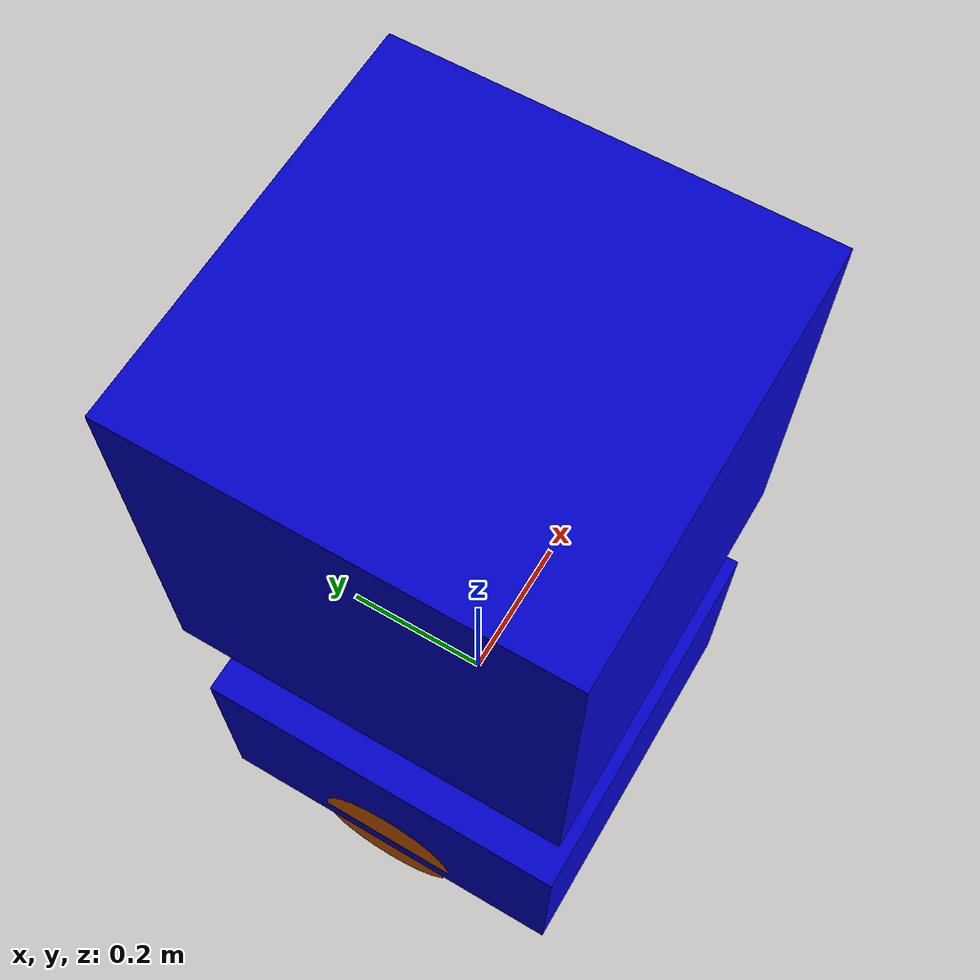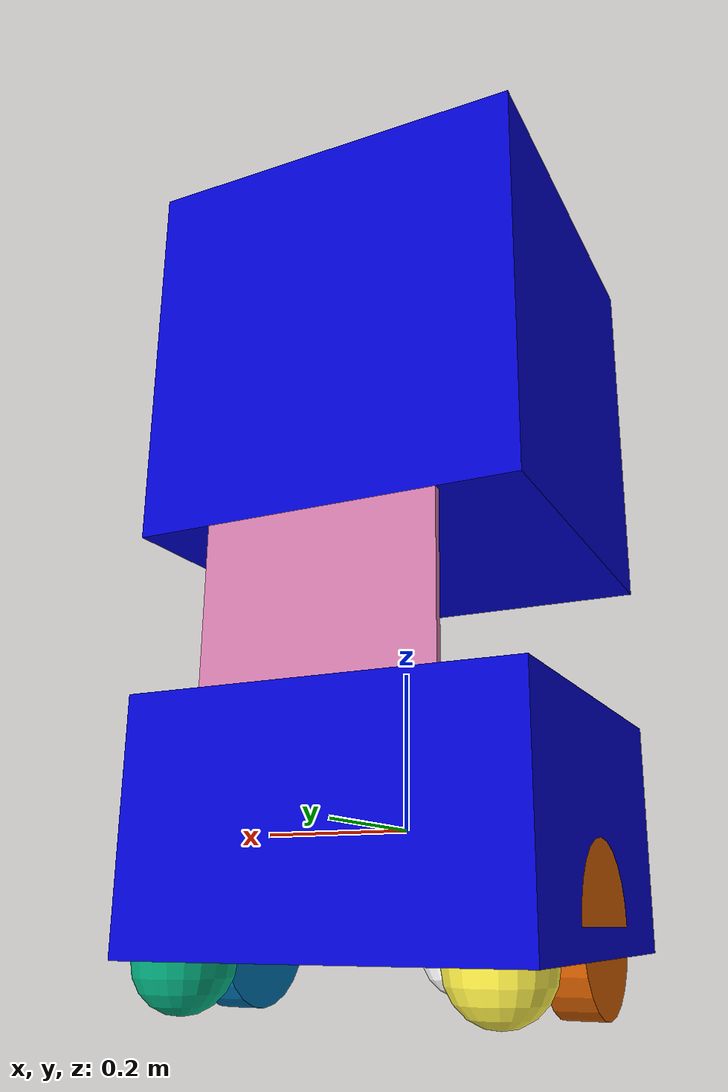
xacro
<?xml version='1.0'?>
<robot name="fyp_robot" xmlns:xacro="http://ros.org/wiki/xacro">
<!-- ixx ixy ixz
     ixy iyy iyz
     ixz iyz izz -->

  <xacro:property name="base_xy" value="0.5" />
  <xacro:property name="b_base_z" value="0.3" />
  <xacro:property name="t_base_z" value="0.5" />
  <xacro:property name="wheeldiam" value="0.2" />
  <xacro:property name="casterradi" value="0.06" />
  <xacro:property name="wheellength" value="0.05" />
  <xacro:property name="pi" value="3.1415" />
  <xacro:property name="caster_mass" value="1" />
  <xacro:property name="wheel_mass" value="5" />
  <xacro:property name="base_mass" value="10" />

  <xacro:property name="base_xy2" value="${base_xy*base_xy}" />
  <xacro:property name="b_base_z2" value="${b_base_z*b_base_z}" />
  <xacro:property name="t_base_z2" value="${t_base_z*t_base_z}" />

  <material name="blue">
    <color rgba="0 0 0.8 1"/>
  </material>

  <material name="black">
    <color rgba="0 0 0 1"/>
  </material>

  <material name="white">
    <color rgba="1 1 1 1"/>
  </material>

  <xacro:macro name="default_inertial" params="mass">
    <inertial>
      <mass value="${mass}" />
      <inertia ixx="1.0" ixy="0.0" ixz="0.0" iyy="1.0" iyz="0.0" izz="1.0" />
    </inertial>
  </xacro:macro>
  <xacro:macro name="cuboid_inertial" params="mass height">
    <inertial>
      <mass value="${mass}" />
      <inertia ixx="${(1/12)*base_mass*(height*height+base_xy2)}" ixy="0.0" ixz="0.0" iyy="${(1/12)*base_mass*(base_xy2+base_xy2)}" iyz="0.0" izz="${(1/12)*base_mass*(base_xy2+height*height)}" />
    </inertial>
  </xacro:macro>

<!-- Add the rectangular base -->
  <link name="base_link">
    <visual>
      <geometry>
        <box size="${base_xy} ${base_xy} ${b_base_z}"/>
      </geometry>
      <material name="blue"/>
    </visual>
    <collision>
      <geometry>
        <box size="${base_xy} ${base_xy} ${b_base_z}"/>
      </geometry>
    </collision>
    <xacro:cuboid_inertial mass="${base_mass}" height="${b_base_z}"/>
  </link>
<!-- add a caster front to the robot -->
  <link name="caster_front">
    <visual>
      <geometry>
        <sphere radius="${casterradi}"/>
      </geometry>
      <origin xyz="0 0 0" rpy="0 0 0"/>
      <material name="white"/>
    </visual>
    <collision>
     <geometry>
        <sphere radius="${casterradi}"/>
      </geometry>
      <origin xyz="0 0 0" rpy="0 0 0"/>
    </collision>
    <xacro:default_inertial mass="${caster_mass}"/>
  </link>
  <joint name="caster_front_joint" type="continuous">
    <parent link="base_link"/>
    <child link="caster_front"/>
    <origin xyz="0 -0.19 -0.15" rpy="0 0 0"/>
  </joint>
<!-- add a caster back left to the robot -->
  <link name="caster_back_left">
    <visual>
      <geometry>
        <sphere radius="${casterradi}"/>
      </geometry>
      <origin xyz="0 0 0" rpy="0 0 0"/>
    </visual>
    <collision>
     <geometry>
        <sphere radius="${casterradi}"/>
      </geometry>
      <origin xyz="0 0 0" rpy="0 0 0"/>
    </collision>
    <xacro:default_inertial mass="${caster_mass}"/>
  </link>
  <joint name="caster_back_left_joint" type="continuous">
    <parent link="base_link"/>
    <child link="caster_back_left"/>
    <origin xyz="0.19 0.19 -0.15" rpy="0 0 0"/>
  </joint>
<!-- add a caster back right to the robot -->
  <link name="caster_back_right">
    <visual>
      <geometry>
        <sphere radius="${casterradi}"/>
      </geometry>
      <origin xyz="0 0 0" rpy="0 0 0"/>
    </visual>
    <collision>
     <geometry>
        <sphere radius="${casterradi}"/>
      </geometry>
      <origin xyz="0 0 0" rpy="0 0 0"/>
    </collision>
    <xacro:default_inertial mass="${caster_mass}"/>
  </link>
  <joint name="caster_back_right_joint" type="continuous">
    <parent link="base_link"/>
    <child link="caster_back_right"/>
    <origin xyz="-0.19 0.19 -0.15" rpy="0 0 0"/>
  </joint>
<!-- add a left wheel to the robot -->
  <link name="left_wheel">
    <visual>
      <geometry>
        <cylinder length="${wheellength}" radius="${wheeldiam/2}"/>
      </geometry>
      <origin xyz="0 0 0" rpy="0 ${pi/2} 0"/>
    </visual>
    <collision>
     <geometry>
        <cylinder length="${wheellength}" radius="${wheeldiam/2}"/>
      </geometry>
      <origin xyz="0 0 0" rpy="0 ${pi/2} 0"/>
    </collision>
    <xacro:default_inertial mass="${wheel_mass}"/>
  </link>
  <joint name="left_wheel_joint" type="continuous">
    <parent link="base_link"/>
    <child link="left_wheel"/>
      <origin xyz="0.225 0 -0.115" rpy="0 0 0"/>
  </joint>
<!-- add a right wheel to the robot -->
  <link name="right_wheel">
    <visual>
      <geometry>
        <cylinder length="${wheellength}" radius="${wheeldiam/2}"/>
      </geometry>
      <origin xyz="0 0 0" rpy="0 ${pi/2} 0"/>
    </visual>
    <collision>
     <geometry>
        <cylinder length="${wheellength}" radius="${wheeldiam/2}"/>
      </geometry>
      <origin xyz="0 0 0" rpy="0 ${pi/2} 0"/>
    </collision>
    <xacro:default_inertial mass="${wheel_mass}"/>
  </link>
  <joint name="right_wheel_joint" type="continuous">
    <parent link="base_link"/>
    <child link="right_wheel"/>
      <origin xyz="-0.225 0 -0.115" rpy="0 0 0"/>
  </joint>
<!-- add the top part to the robot -->
  <link name="base_back">
    <visual>
      <geometry>
        <box size="0.3 0.01 0.2"/>
      </geometry>
      <origin xyz="0 0.245 0.25" rpy="0 0 0"/>
    </visual>
    <collision>
     <geometry>
        <box size="0.3 0.01 0.2"/>
      </geometry>
      <origin xyz="0 0.245 0.25" rpy="0 0 0"/>
    </collision>
    <xacro:default_inertial mass="1"/>
  </link>
  <joint name="base_back_joint" type="fixed">
    <parent link="base_link"/>
    <child link="base_back"/>
    <origin xyz="0 0 0" rpy="0 0 0"/>
  </joint>

  <link name="base_top">
    <visual>
      <geometry>
        <box size="${base_xy} ${base_xy} ${t_base_z}"/>
      </geometry>
      <origin xyz="0 0 0.6" rpy="0 0 0"/>
      <material name="blue"/>
    </visual>
    <collision>
      <geometry>
        <box size="${base_xy} ${base_xy} ${t_base_z}"/>
      </geometry>
      <origin xyz="0 0 0.6" rpy="0 0 0"/>
    </collision>
    <xacro:cuboid_inertial mass="${base_mass}" height="${t_base_z}"/>
  </link>
  <joint name="base_top_joint" type="fixed">
    <parent link="base_back"/>
    <child link="base_top"/>
    <origin xyz="0 0 0" rpy="0 0 0"/>
  </joint>

</robot>
